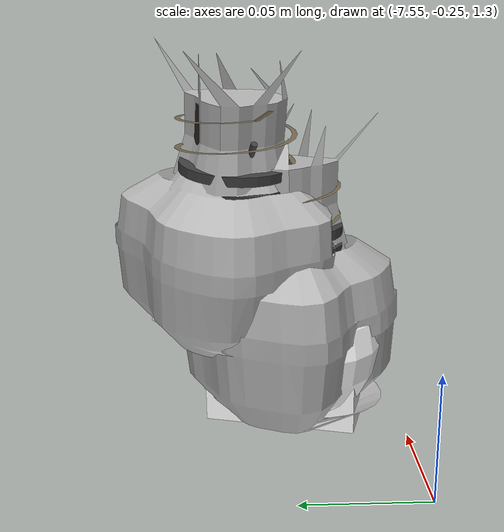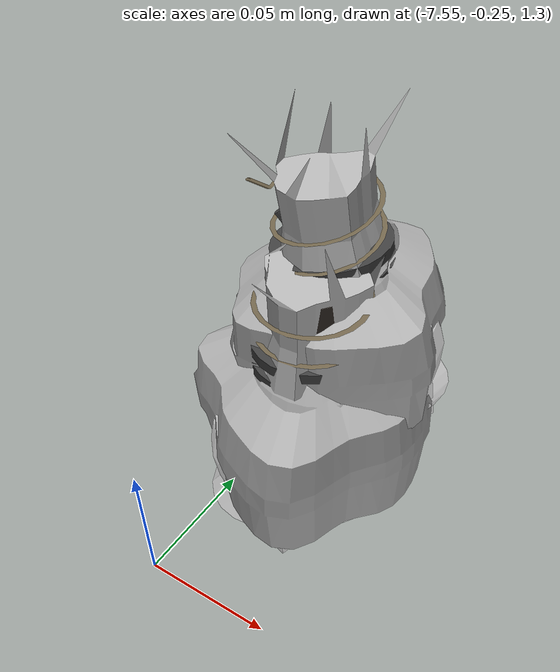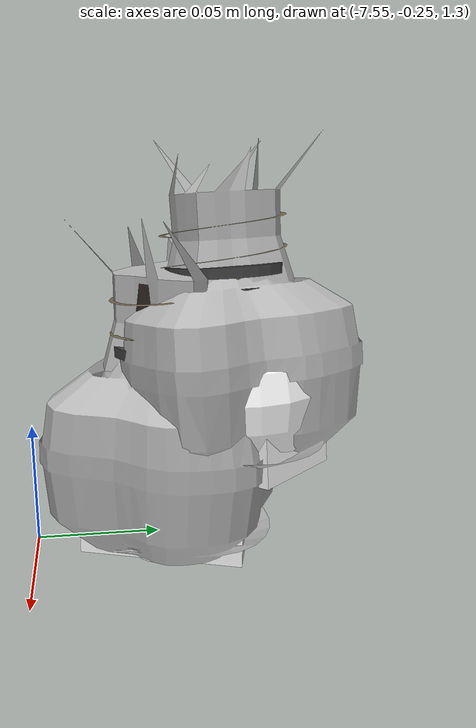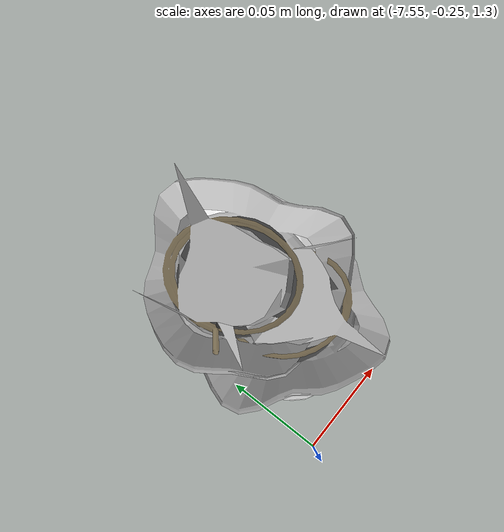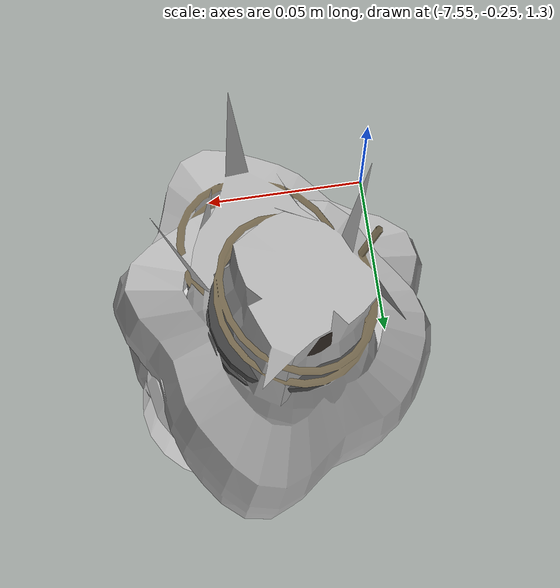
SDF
<sdf version="1.11">
 <world name="peach_orchard">
  <model name="ground">
   <static>true</static>
   <link name="link">
    <visual name="soil">
     <geometry><plane><normal>0 0 1</normal><size>32 22</size></plane></geometry>
     <material>
      <ambient>1 1 1 1</ambient>
      <diffuse>1 1 1 1</diffuse>
      <specular>0.1 0.1 0.1 1</specular>
      <pbr>
       <metal>
        <albedo_map>textures/soil_albedo.png</albedo_map>
        <normal_map type="tangent">textures/soil_normal.png</normal_map>
        <roughness>0.95</roughness>
        <metalness>0</metalness>
       </metal>
      </pbr>
     </material>
    </visual>
    <collision name="c_soil">
     <geometry><plane><normal>0 0 1</normal><size>32 22</size></plane></geometry>
    </collision>
   </link>
  </model>
  <model name="peach_tree_r0_t3_00">
   <pose>-7.50761 -0.176236 1.34974 0 0.117366 -2.7741</pose>
   <static>true</static>
   <link name="bag">
    <visual name="bag_mesh">
     <pose>0 0 0.0467484 0 0 -0</pose>
     <geometry>
      <mesh><uri>model://peach_sim/meshes/bagged_peach.glb</uri><scale>0.950398 1.15041 1.06246</scale></mesh>
     </geometry>
    </visual>
    <visual name="body">
     <pose>0 0 0.0287484 0 0 0</pose>
     <geometry><ellipsoid><radii>0.0356399 0.0299106 0.0310482</radii></ellipsoid></geometry>
     <material>
      <ambient>1 1 1 1</ambient>
      <diffuse>1 1 1 1</diffuse>
      <specular>0.1 0.1 0.1 1</specular>
      <pbr>
       <metal>
        <albedo_map>textures/paper_bag_albedo.png</albedo_map>
        <normal_map type="tangent">textures/paper_bag_normal.png</normal_map>
        <roughness>0.72</roughness>
        <metalness>0</metalness>
       </metal>
      </pbr>
     </material>
    </visual>
    <visual name="bottom_fold">
     <pose>0 0 0.012 0 0 0.35</pose>
     <geometry><box><size>0.0552419 0.0343972 0.022</size></box></geometry>
     <material>
      <ambient>1 1 1 1</ambient>
      <diffuse>1 1 1 1</diffuse>
      <specular>0.1 0.1 0.1 1</specular>
      <pbr>
       <metal>
        <albedo_map>textures/paper_bag_albedo.png</albedo_map>
        <normal_map type="tangent">textures/paper_bag_normal.png</normal_map>
        <roughness>0.8</roughness>
        <metalness>0</metalness>
       </metal>
      </pbr>
     </material>
    </visual>
    <visual name="fruit">
     <pose>0 0 0.0208841 0 0 0</pose>
     <geometry><sphere><radius>0.0279594</radius></sphere></geometry>
     <material>
      <ambient>1 1 1 1</ambient>
      <diffuse>1 1 1 1</diffuse>
      <specular>0.1 0.1 0.1 1</specular>
      <pbr>
       <metal>
        <albedo_map>textures/fruit_skin_albedo.png</albedo_map>
        <normal_map type="tangent">textures/fruit_skin_normal.png</normal_map>
        <roughness>0.55</roughness>
        <metalness>0</metalness>
       </metal>
      </pbr>
     </material>
    </visual>
    <visual name="neck">
     <pose>0 0 0.0664967 0 0 0</pose>
     <geometry><cylinder><radius>0.013</radius><length>0.018</length></cylinder></geometry>
     <material>
      <ambient>1 1 1 1</ambient>
      <diffuse>1 1 1 1</diffuse>
      <specular>0.1 0.1 0.1 1</specular>
      <pbr>
       <metal>
        <albedo_map>textures/paper_bag_albedo.png</albedo_map>
        <normal_map type="tangent">textures/paper_bag_normal.png</normal_map>
        <roughness>0.75</roughness>
        <metalness>0</metalness>
       </metal>
      </pbr>
     </material>
    </visual>
    <visual name="gather">
     <pose>0 0 0.0474967 0 0 0</pose>
     <geometry><cylinder><radius>0.019</radius><length>0.02</length></cylinder></geometry>
     <material>
      <ambient>1 1 1 1</ambient>
      <diffuse>1 1 1 1</diffuse>
      <specular>0.1 0.1 0.1 1</specular>
      <pbr>
       <metal>
        <albedo_map>textures/paper_bag_albedo.png</albedo_map>
        <normal_map type="tangent">textures/paper_bag_normal.png</normal_map>
        <roughness>0.8</roughness>
        <metalness>0</metalness>
       </metal>
      </pbr>
     </material>
    </visual>
    <visual name="inner_paper">
     <pose>0 0 0.0714967 0 0 0</pose>
     <geometry><cylinder><radius>0.01</radius><length>0.008</length></cylinder></geometry>
     <material>
      <ambient>0.180392 0.14902 0.133333 1</ambient>
      <diffuse>0.180392 0.14902 0.133333 1</diffuse>
      <specular>0.1 0.1 0.1 1</specular>
     </material>
    </visual>
    <visual name="wire_0">
     <pose>0 0 0.0614967 0 0 0</pose>
     <geometry><cylinder><radius>0.0205</radius><length>0.0035</length></cylinder></geometry>
     <material>
      <ambient>0.25 0.25 0.25 1</ambient>
      <diffuse>0.25 0.25 0.25 1</diffuse>
      <specular>0.1 0.1 0.1 1</specular>
     </material>
    </visual>
    <visual name="wire_1">
     <pose>0 0 0.0684967 0 0 0</pose>
     <geometry><cylinder><radius>0.0205</radius><length>0.0035</length></cylinder></geometry>
     <material>
      <ambient>0.25 0.25 0.25 1</ambient>
      <diffuse>0.25 0.25 0.25 1</diffuse>
      <specular>0.1 0.1 0.1 1</specular>
     </material>
    </visual>
    <visual name="wire_tail">
     <pose>0.01 0 0.0694967 0 0.521618 0</pose>
     <geometry><cylinder><radius>0.0012</radius><length>0.026</length></cylinder></geometry>
     <material>
      <ambient>0.25 0.25 0.25 1</ambient>
      <diffuse>0.25 0.25 0.25 1</diffuse>
      <specular>0.1 0.1 0.1 1</specular>
     </material>
    </visual>
    <collision name="c_body">
     <pose>0 0 0.0287484 0 0 0</pose>
     <geometry><cylinder><radius>0.0356399</radius><length>0.0574967</length></cylinder></geometry>
    </collision>
   </link>
  </model>
  <model name="peach_tree_r0_t3_01">
   <pose>-7.51132 -0.199135 1.31949 0 0.0129369 0.936115</pose>
   <static>true</static>
   <link name="bag">
    <visual name="bag_mesh">
     <pose>0 0 0.0494573 0 0 0</pose>
     <geometry>
      <mesh><uri>model://peach_sim/meshes/bagged_peach.glb</uri><scale>0.978391 1.15484 1.12403</scale></mesh>
     </geometry>
    </visual>
    <visual name="body">
     <pose>0 0 0.0314573 0 0 0</pose>
     <geometry><ellipsoid><radii>0.0366897 0.030026 0.0339738</radii></ellipsoid></geometry>
     <material>
      <ambient>1 1 1 1</ambient>
      <diffuse>1 1 1 1</diffuse>
      <specular>0.1 0.1 0.1 1</specular>
      <pbr>
       <metal>
        <albedo_map>textures/paper_bag_albedo.png</albedo_map>
        <normal_map type="tangent">textures/paper_bag_normal.png</normal_map>
        <roughness>0.72</roughness>
        <metalness>0</metalness>
       </metal>
      </pbr>
     </material>
    </visual>
    <visual name="bottom_fold">
     <pose>0 0 0.012 0 0 0.35</pose>
     <geometry><box><size>0.056869 0.0345299 0.022</size></box></geometry>
     <material>
      <ambient>1 1 1 1</ambient>
      <diffuse>1 1 1 1</diffuse>
      <specular>0.1 0.1 0.1 1</specular>
      <pbr>
       <metal>
        <albedo_map>textures/paper_bag_albedo.png</albedo_map>
        <normal_map type="tangent">textures/paper_bag_normal.png</normal_map>
        <roughness>0.8</roughness>
        <metalness>0</metalness>
       </metal>
      </pbr>
     </material>
    </visual>
    <visual name="fruit">
     <pose>0 0 0.0190084 0 0 0</pose>
     <geometry><sphere><radius>0.0260087</radius></sphere></geometry>
     <material>
      <ambient>1 1 1 1</ambient>
      <diffuse>1 1 1 1</diffuse>
      <specular>0.1 0.1 0.1 1</specular>
      <pbr>
       <metal>
        <albedo_map>textures/fruit_skin_albedo.png</albedo_map>
        <normal_map type="tangent">textures/fruit_skin_normal.png</normal_map>
        <roughness>0.55</roughness>
        <metalness>0</metalness>
       </metal>
      </pbr>
     </material>
    </visual>
    <visual name="neck">
     <pose>0 0 0.0719145 0 0 0</pose>
     <geometry><cylinder><radius>0.013</radius><length>0.018</length></cylinder></geometry>
     <material>
      <ambient>1 1 1 1</ambient>
      <diffuse>1 1 1 1</diffuse>
      <specular>0.1 0.1 0.1 1</specular>
      <pbr>
       <metal>
        <albedo_map>textures/paper_bag_albedo.png</albedo_map>
        <normal_map type="tangent">textures/paper_bag_normal.png</normal_map>
        <roughness>0.75</roughness>
        <metalness>0</metalness>
       </metal>
      </pbr>
     </material>
    </visual>
    <visual name="gather">
     <pose>0 0 0.0529145 0 0 0</pose>
     <geometry><cylinder><radius>0.019</radius><length>0.02</length></cylinder></geometry>
     <material>
      <ambient>1 1 1 1</ambient>
      <diffuse>1 1 1 1</diffuse>
      <specular>0.1 0.1 0.1 1</specular>
      <pbr>
       <metal>
        <albedo_map>textures/paper_bag_albedo.png</albedo_map>
        <normal_map type="tangent">textures/paper_bag_normal.png</normal_map>
        <roughness>0.8</roughness>
        <metalness>0</metalness>
       </metal>
      </pbr>
     </material>
    </visual>
    <visual name="inner_paper">
     <pose>0 0 0.0769145 0 0 0</pose>
     <geometry><cylinder><radius>0.01</radius><length>0.008</length></cylinder></geometry>
     <material>
      <ambient>0.180392 0.14902 0.133333 1</ambient>
      <diffuse>0.180392 0.14902 0.133333 1</diffuse>
      <specular>0.1 0.1 0.1 1</specular>
     </material>
    </visual>
    <visual name="wire_0">
     <pose>0 0 0.0669145 0 0 0</pose>
     <geometry><cylinder><radius>0.0205</radius><length>0.0035</length></cylinder></geometry>
     <material>
      <ambient>0.25 0.25 0.25 1</ambient>
      <diffuse>0.25 0.25 0.25 1</diffuse>
      <specular>0.1 0.1 0.1 1</specular>
     </material>
    </visual>
    <visual name="wire_1">
     <pose>0 0 0.0739145 0 0 0</pose>
     <geometry><cylinder><radius>0.0205</radius><length>0.0035</length></cylinder></geometry>
     <material>
      <ambient>0.25 0.25 0.25 1</ambient>
      <diffuse>0.25 0.25 0.25 1</diffuse>
      <specular>0.1 0.1 0.1 1</specular>
     </material>
    </visual>
    <visual name="wire_tail">
     <pose>0.01 0 0.0749145 0 0.521618 0</pose>
     <geometry><cylinder><radius>0.0012</radius><length>0.026</length></cylinder></geometry>
     <material>
      <ambient>0.25 0.25 0.25 1</ambient>
      <diffuse>0.25 0.25 0.25 1</diffuse>
      <specular>0.1 0.1 0.1 1</specular>
     </material>
    </visual>
    <collision name="c_body">
     <pose>0 0 0.0314573 0 0 0</pose>
     <geometry><cylinder><radius>0.0366897</radius><length>0.0629145</length></cylinder></geometry>
    </collision>
   </link>
  </model>
 </world>
</sdf>
